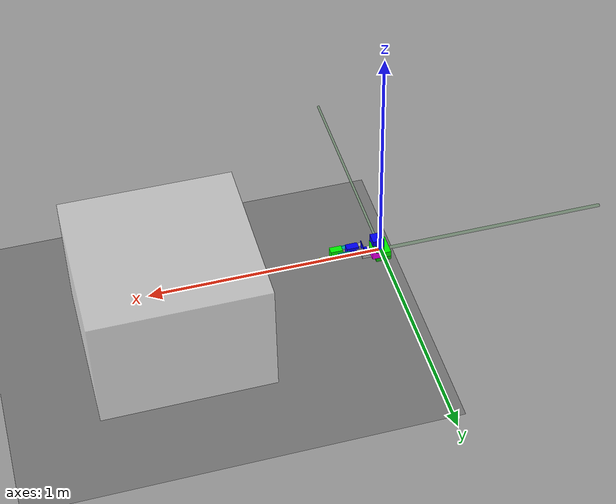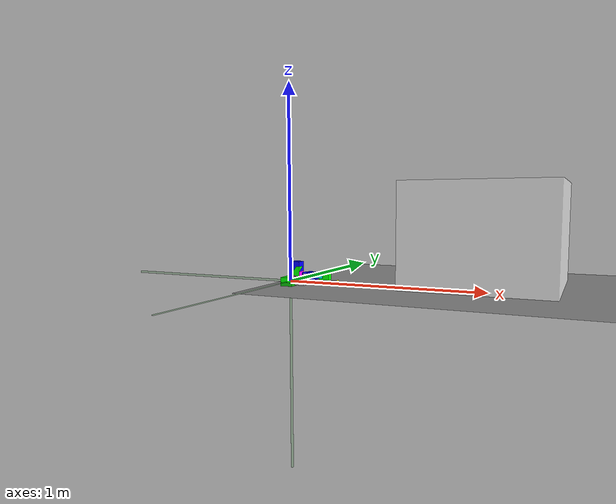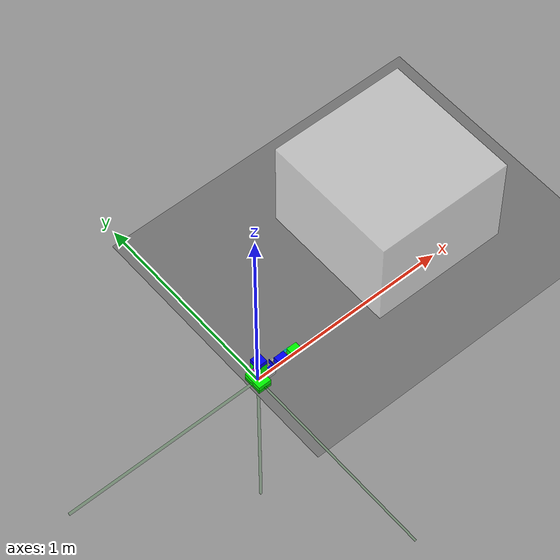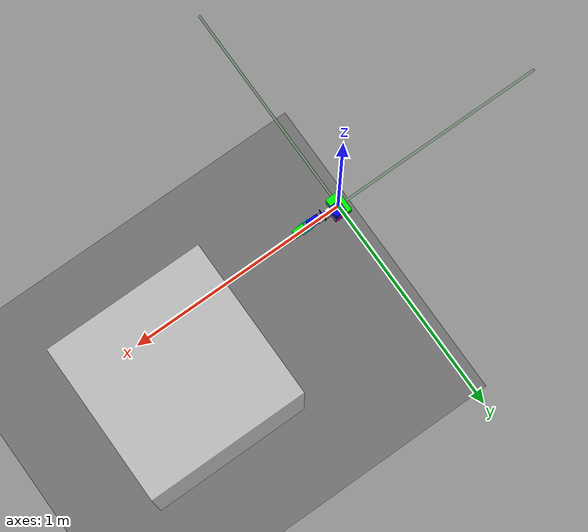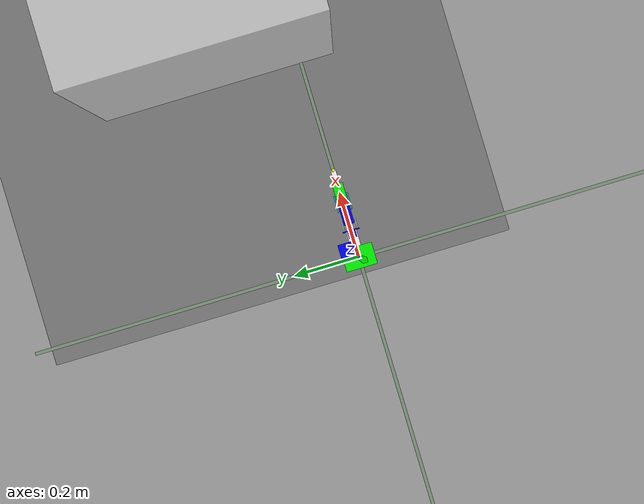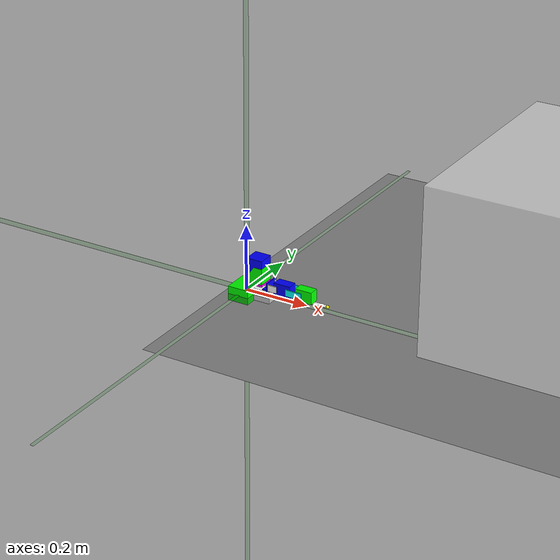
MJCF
<?xml version="1.0" encoding="utf-8"?>
<mujoco>
	<compiler angle="radian" coordinate="local" meshdir="../stls/fetch" texturedir="../textures" discardvisual="false" inertiafromgeom="true" balanceinertia="true"></compiler>
	<option timestep="0.002">
		<flag warmstart="enable"></flag>
	</option>

	<include file="shared.xml"></include>

	<worldbody>
		<geom name="floor0" pos="0.8 0.25 0" size="0.85 0.7 1" type="plane" condim="3" material="floor_mat"></geom>
		<body name="floor0" pos="0.8 0.25 0">
			<site name="target0" pos="0 0 0" size="0.02 0.02 0.02" rgba="1 0 1 0.2" type="ellipsoid"></site>
			<site name="target1" pos="0 0 0" size="0.02 0.02 0.02" rgba="0 1 0 0.2" type="ellipsoid"></site>
			<site name="target2" pos="0 0 0" size="0.02 0.02 0.02" rgba="0 0 1 0.2" type="ellipsoid"></site>
			<site name="target3" pos="0 0 0" size="0.02 0.02 0.02" rgba="1 1 0 0.2" type="ellipsoid"></site>
			<site name="target4" pos="0 0 0" size="0.02 0.02 0.02" rgba="0 1 1 0.2" type="ellipsoid"></site>
			<site name="final_arm_target" pos="0 0 0" size="0.02 0.02 0.02" rgba="0 0 0 0.5" type="ellipsoid"></site>
			<site name="goal0" pos="0 0 0" size="0.02 0.02 0.02" rgba="1 0 0 0.1" type="ellipsoid"></site>
			<site name="goal1" pos="0 0 0" size="0.02 0.02 0.02" rgba="0 1 0 0.1" type="ellipsoid"></site>
			<site name="goal2" pos="0 0 0" size="0.02 0.02 0.02" rgba="0 0 1 0.1" type="ellipsoid"></site>
			<site name="goal3" pos="0 0 0" size="0.02 0.02 0.02" rgba="1 1 0 0.1" type="ellipsoid"></site>
			<site name="goal4" pos="0 0 0" size="0.02 0.02 0.02" rgba="0 1 1 0.1" type="ellipsoid"></site>
			<site name="final_arm_goal" pos="0 0 0" size="0.02 0.02 0.02" rgba="0 0 0 0.1" type="ellipsoid"></site>
		</body>

		<include file="robot.xml"></include>

		<body pos="0.95 0.25 0.25" name="table0">
			<geom size="0.35 0.35 0.25" type="box" mass="2000" material="table_mat" rgba="1 1 1 0.5"></geom>
		</body>

		<body name="object0" pos="0.025 0.025 0.025">
			<joint name="object0:joint" type="free" damping="0.01"></joint>
			<geom size="0.025 0.025 0.025" type="box" condim="3" name="object0" material="block_mat" rgba="1 0 1 1" mass="2"></geom>
			<site name="object0" pos="0 0 0" size="0.02 0.02 0.02" rgba="1 0 0 1" type="sphere"></site>
		</body>
		<body name="object1" pos="0.025 0.025 0.05">
			<joint name="object1:joint" type="free" damping="0.01"></joint>
			<geom size="0.025 0.025 0.025" type="box" condim="3" name="object1" material="block_mat" rgba="0 1 0 1" mass="2"></geom>
			<site name="object1" pos="0 0 0" size="0.02 0.02 0.02" rgba="1 0 0 1" type="sphere"></site>
		</body>
		<body name="object2" pos="0.025 0.025 0.075">
			<joint name="object2:joint" type="free" damping="0.01"></joint>
			<geom size="0.025 0.025 0.025" type="box" condim="3" name="object2" material="block_mat" rgba="0 0 1 1" mass="2"></geom>
			<site name="object2" pos="0 0 0" size="0.02 0.02 0.02" rgba="1 0 0 1" type="sphere"></site>
		</body>
		<body name="object3" pos="0.025 0.025 0.075">
			<joint name="object3:joint" type="free" damping="0.01"></joint>
			<geom size="0.025 0.025 0.025" type="box" condim="3" name="object3" material="block_mat" rgba="1 1 0 1" mass="2"></geom>
			<site name="object3" pos="0 0 0" size="0.02 0.02 0.02" rgba="1 0 0 1" type="sphere"></site>
		</body>
		<body name="object4" pos="0.025 0.025 0.075">
			<joint name="object4:joint" type="free" damping="0.01"></joint>
			<geom size="0.025 0.025 0.025" type="box" condim="3" name="object4" material="block_mat" rgba="0 1 1 1" mass="2"></geom>
			<site name="object4" pos="0 0 0" size="0.02 0.02 0.02" rgba="1 0 0 1" type="sphere"></site>
		</body>

		<light directional="true" ambient="0.2 0.2 0.2" diffuse="0.8 0.8 0.8" specular="0.3 0.3 0.3" castshadow="false" pos="0 0 4" dir="0 0 -1" name="light0"></light>
	</worldbody>
	<actuator>
		<position ctrllimited="true" ctrlrange="0 0.2" joint="robot0:l_gripper_finger_joint" kp="30000" name="robot0:l_gripper_finger_joint" user="1"></position>
		<position ctrllimited="true" ctrlrange="0 0.2" joint="robot0:r_gripper_finger_joint" kp="30000" name="robot0:r_gripper_finger_joint" user="1"></position>
	</actuator>

</mujoco>

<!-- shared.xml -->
<mujoco>
    <asset>
        <texture type="skybox" builtin="gradient" rgb1="0.44 0.85 0.56" rgb2="0.46 0.87 0.58" width="32" height="32"></texture>
        <texture name="texture_block" file="block.png" gridsize="3 4" gridlayout=".U..LFRB.D.."></texture>

        <material name="floor_mat" specular="0" shininess="0.5" reflectance="0" rgba="0.2 0.2 0.2 1"></material>
        <material name="table_mat" specular="0" shininess="0.5" reflectance="0" rgba="0.93 0.93 0.93 1"></material>
        <material name="block_mat" specular="0" shininess="0.5" reflectance="0" rgba="0.2 0.2 0.2 1"></material>
        <material name="puck_mat" specular="0" shininess="0.5" reflectance="0" rgba="0.2 0.2 0.2 1"></material>
        <material name="robot0:geomMat" shininess="0.03" specular="0.4"></material>
        <material name="robot0:gripper_finger_mat" shininess="0.03" specular="0.4" reflectance="0"></material>
        <material name="robot0:gripper_mat" shininess="0.03" specular="0.4" reflectance="0"></material>
        <material name="robot0:arm_mat" shininess="0.03" specular="0.4" reflectance="0"></material>
        <material name="robot0:head_mat" shininess="0.03" specular="0.4" reflectance="0"></material>
        <material name="robot0:torso_mat" shininess="0.03" specular="0.4" reflectance="0"></material>
        <material name="robot0:base_mat" shininess="0.03" specular="0.4" reflectance="0"></material>
    </asset>

    <equality>
        <!-- based on http://www.mujoco.org/forum/index.php?threads/2dof-reachers-fingertip-doesnt-follow-the-mocap-body.3742/ change the weld to connect -->
        <connect body1="robot0:mocap" body2="robot0:gripper_link" anchor="0.9 0.95 0.0" solimp="0.01 0.9 0.001" solref="0.02 1"/>
    </equality>

    <contact>
        <exclude body1="robot0:r_gripper_finger_link" body2="robot0:l_gripper_finger_link"></exclude>
    </contact>

    <default>
        <default class="robot0:fetch">
            <geom margin="0.001" material="robot0:geomMat" rgba="1 1 1 1" solimp="0.99 0.99 0.01" solref="0.01 1" type="mesh" user="0"></geom>
            <joint armature="1" damping="10" frictionloss="0" stiffness="0"></joint>

            <default class="robot0:fetchGripper">
                <geom condim="4" margin="0.001" type="box" user="0" rgba="0.356 0.361 0.376 1.0"></geom>
                <joint armature="100" damping="1000" limited="true" solimplimit="0.01 0.999 0.01" solreflimit="0.01 1" type="slide"></joint>
            </default>

            <default class="robot0:grey">
                <geom rgba="0.356 0.361 0.376 1.0"></geom>
            </default>
            <default class="robot0:blue">
                <geom rgba="0.086 0.506 0.767 1.0"></geom>
            </default>
        </default>
    </default>
</mujoco>

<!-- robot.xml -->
<mujoco model="keybot">
    <body mocap="true" name="robot0:mocap" pos="0 0 0">
        <geom conaffinity="0" contype="0" pos="0 0 0" rgba="0 0.5 0 0.7" size="0.005 0.005 0.005" type="box"></geom>
        <geom conaffinity="0" contype="0" pos="0 0 0" rgba="0 0.5 0 0.1" size="1 0.005 0.005" type="box"></geom>
        <geom conaffinity="0" contype="0" pos="0 0 0" rgba="0 0.5 0 0.1" size="0.005 1 0.001" type="box"></geom>
        <geom conaffinity="0" contype="0" pos="0 0 0" rgba="0 0.5 0 0.1" size="0.005 0.005 1" type="box"></geom>
    </body>
    <body childclass="robot0:fetch" name="robot0:base_link" pos="0 0 0">
        <joint armature="0.0001" axis="1 0 0" damping="1e+11" name="robot0:slide0" pos="0 0 0" type="slide"></joint>
		<joint armature="0.0001" axis="0 1 0" damping="1e+11" name="robot0:slide1" pos="0 0 0" type="slide"></joint>
		<joint armature="0.0001" axis="0 0 1" damping="1e+11" name="robot0:slide2" pos="0 0 0" type="slide"></joint>
        <inertial diaginertia="0.03 0.03 0.03" mass="20" pos="0 0 0"></inertial>
        <body name="base_link" pos="0 0 0">
            <geom size="0.0325 0.047 0.022" type="box" contype="0" conaffinity="0" group="1" rgba="0 1 0 1" />
            <body name="rotator" pos="0.0585 0 0">
                <geom size="0.026 0.0155 0.0185" type="box" contype="0" conaffinity="0" group="1" />
                <body name="H_frame_rotator" pos="0.013 0 0.0189">
                    <inertial pos="0 0 0" mass="0.1" diaginertia="0.01 0.01 0.01" />
                    <joint name='rotator' pos="0 0 0" axis="0 0 1" limited="true" range="-1.5 1.5" />
                    <geom size="0.012 0.012 0.002" type="box" contype="0" conaffinity="0" group="1" rgba="0 0 1 1" />
                    <body name="V_frame_rotator" pos="0.01 0 0.0157">
                        <geom size="0.0015 0.025 0.015" type="box" contype="0" conaffinity="0" group="1" rgba="0 0 1 1" />
                        <body name="claw_1_left" pos="0.015 -0.02 0">
                            <geom size="0.015 0.0015 0.01" type="box" contype="0" conaffinity="0" group="1" />
                            <body name="distancer" pos="0 0 0">
                                <inertial pos="0 0 0" mass="0.1" diaginertia="0.01 0.01 0.01" />
                                <joint name="distancer" pos="0 0 0" axis="0 1 0" limited="true" range="-0.99 0.99" />
                                <geom size="0.026 0.0155 0.0185" pos="0.03 0.02 0" type="box" contype="0" conaffinity="0" group="1" rgba="0 0 1 1" />
                                <body name="claw_2_left" pos="0.07 0 0">
                                    <geom size="0.025 0.0015 0.01" type="box" contype="0" conaffinity="0" group="1" rgba="0 1 1 1" />
                                    <body name="player" pos="0 0 0">
                                        <inertial pos="0 0 0" mass="0.1" diaginertia="0.01 0.01 0.01" />
                                        <joint name="player" pos="0 0 0" axis="0 1 0" limited="true" range="-0.99 0.99" />
                                        <geom size="0.026 0.0155 0.0185" pos="0.03 0.02 0" type="box" contype="0" conaffinity="0" group="1" rgba="0 1 0 1" />
                                        <body name="plank" pos="0 0 0">
                                            <geom size="0.03 0.0075 0.0005" pos="0.07 0.02 -0.019" type="box" contype="0" conaffinity="0" group="1" />
                                            <body name="sensor" pos="0 0 0">
                                                <geom size="0.005"  type="sphere" pos="0.1 0.02 -0.02" contype="0" conaffinity="0" group="1" rgba="1 1 0 1" />
                                            </body>
                                            <body name="robot0:gripper_link" pos="0.1 0.02 -0.02">
                                                 <body childclass="robot0:fetchGripper" name="robot0:r_gripper_finger_link" pos="0 0.0000159 0">
                                                    <inertial diaginertia="0.1 0.1 0.1" mass="0.01" pos="0 0 0"></inertial>
                                                    <joint axis="1 1 0" name="robot0:r_gripper_finger_joint" range="0 0.005"></joint>
                                                    <geom pos="0 -0.0008 0" size="0.00385 0.0007 0.00035" type="box" name="robot0:r_gripper_finger_link" material="robot0:gripper_finger_mat" condim="4" friction="1 0.05 0.01"></geom>
                                                </body>
                                                <body childclass="robot0:fetchGripper" name="robot0:l_gripper_finger_link" pos="0 -0.0000159 0">
                                                    <inertial diaginertia="0.1 0.1 0.1" mass="0.01" pos="0 0 0"></inertial>
                                                    <joint axis="1 -1 0" name="robot0:l_gripper_finger_joint" range="0 0.005"></joint>
                                                    <geom pos="0 0.0008 0" size="0.00385 0.0007 0.00035" type="box" name="robot0:l_gripper_finger_link" material="robot0:gripper_finger_mat" condim="4" friction="1 0.05 0.01"></geom>
                                                </body>
                                                <site name="robot0:grip" pos="0.0 0.0 0.0" rgba="1 0 0 0" size="0.02 0.02 0.02"></site>
                                            </body>

                                        </body>
                                    </body>
                                </body>
                                <body name="claw_2_right" pos="0.07 0.04 0">
                                    <geom size="0.025 0.0015 0.01" type="box" contype="0" conaffinity="0" group="1" rgba="0 1 1 1" />
                                </body>
                            </body>
                        </body>
                        <body name="claw_1_right" pos="0.015 0.02 0">
                            <geom size="0.015 0.0015 0.01" type="box" contype="0" conaffinity="0" group="1" />

                        </body>
                    </body>

                </body>

            </body>
        </body>

    </body>

</mujoco>
